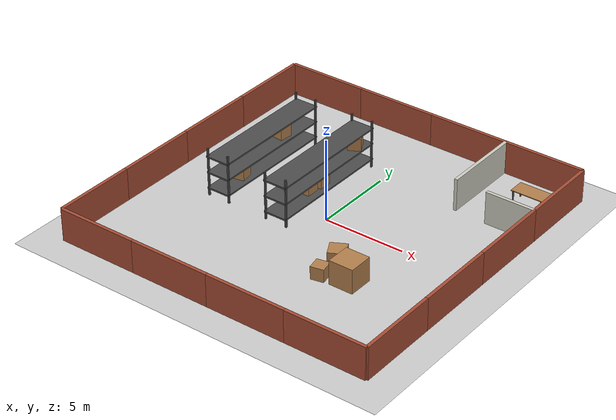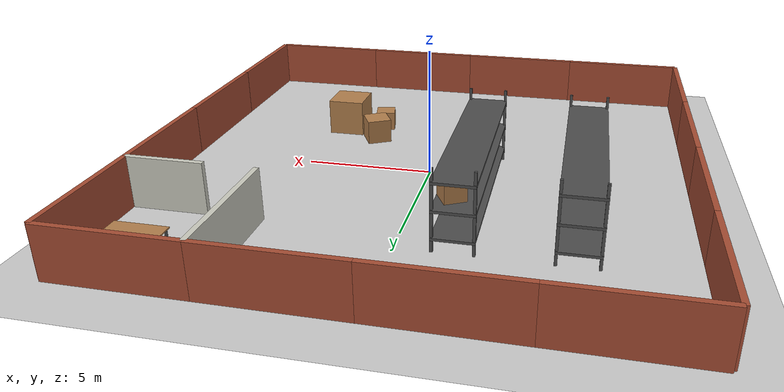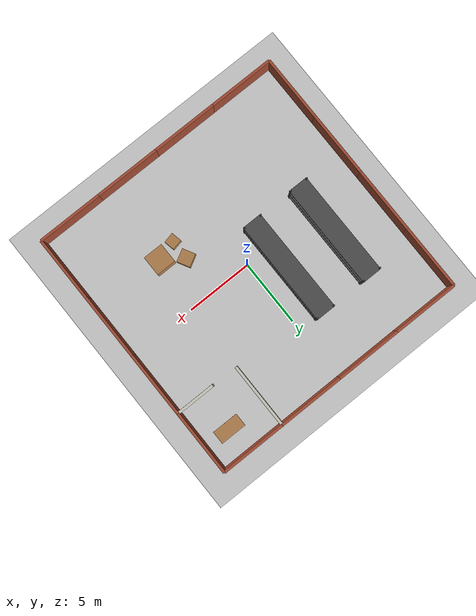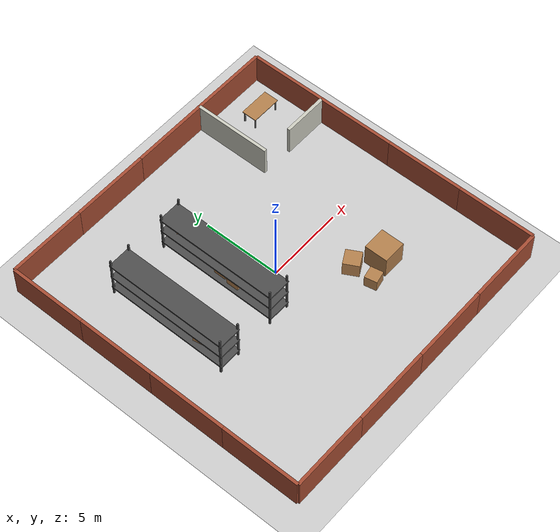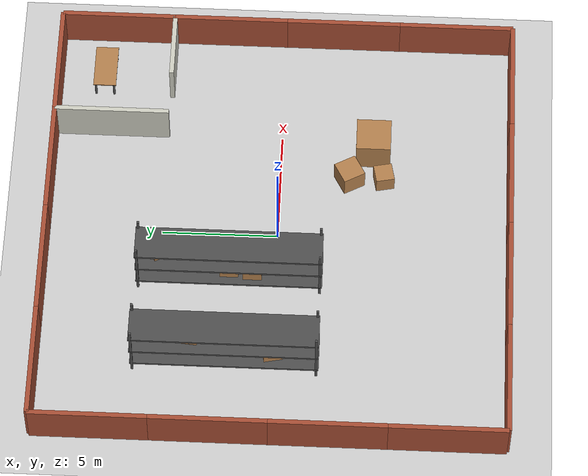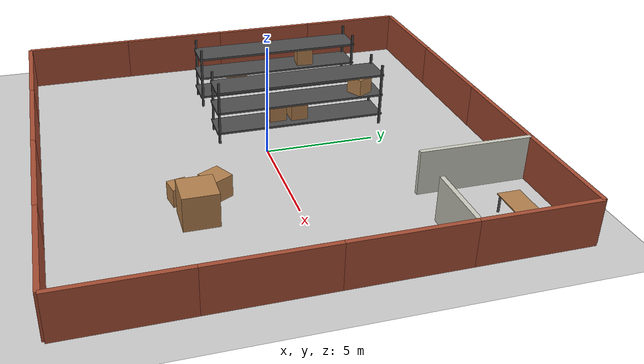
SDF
<?xml version="1.0" ?>
<sdf version="1.6">
  <world name="warehouse">
    <!-- A global light source -->
    <include>
      <uri>model://sun</uri>
    </include>
    <!-- A ground plane -->
    <include>
      <uri>model://ground_plane</uri>
    </include>

    <!-- Outer Walls (Segmented to fix Texture Stretching) -->

    <!-- North Wall Segments -->
    <model name="wall_north_1"><pose>-7.5 10 1 0 0 0</pose><static>true</static><link name="link"><collision name="collision"><geometry><box><size>5 0.2 2</size></box></geometry></collision><visual name="visual"><geometry><box><size>5 0.2 2</size></box></geometry><material><script><uri>file://media/materials/scripts/gazebo.material</uri><name>Gazebo/Bricks</name></script></material></visual></link></model>
    <model name="wall_north_2"><pose>-2.5 10 1 0 0 0</pose><static>true</static><link name="link"><collision name="collision"><geometry><box><size>5 0.2 2</size></box></geometry></collision><visual name="visual"><geometry><box><size>5 0.2 2</size></box></geometry><material><script><uri>file://media/materials/scripts/gazebo.material</uri><name>Gazebo/Bricks</name></script></material></visual></link></model>
    <model name="wall_north_3"><pose>2.5 10 1 0 0 0</pose><static>true</static><link name="link"><collision name="collision"><geometry><box><size>5 0.2 2</size></box></geometry></collision><visual name="visual"><geometry><box><size>5 0.2 2</size></box></geometry><material><script><uri>file://media/materials/scripts/gazebo.material</uri><name>Gazebo/Bricks</name></script></material></visual></link></model>
    <model name="wall_north_4"><pose>7.5 10 1 0 0 0</pose><static>true</static><link name="link"><collision name="collision"><geometry><box><size>5 0.2 2</size></box></geometry></collision><visual name="visual"><geometry><box><size>5 0.2 2</size></box></geometry><material><script><uri>file://media/materials/scripts/gazebo.material</uri><name>Gazebo/Bricks</name></script></material></visual></link></model>

    <!-- South Wall Segments -->
    <model name="wall_south_1"><pose>-7.5 -10 1 0 0 0</pose><static>true</static><link name="link"><collision name="collision"><geometry><box><size>5 0.2 2</size></box></geometry></collision><visual name="visual"><geometry><box><size>5 0.2 2</size></box></geometry><material><script><uri>file://media/materials/scripts/gazebo.material</uri><name>Gazebo/Bricks</name></script></material></visual></link></model>
    <model name="wall_south_2"><pose>-2.5 -10 1 0 0 0</pose><static>true</static><link name="link"><collision name="collision"><geometry><box><size>5 0.2 2</size></box></geometry></collision><visual name="visual"><geometry><box><size>5 0.2 2</size></box></geometry><material><script><uri>file://media/materials/scripts/gazebo.material</uri><name>Gazebo/Bricks</name></script></material></visual></link></model>
    <model name="wall_south_3"><pose>2.5 -10 1 0 0 0</pose><static>true</static><link name="link"><collision name="collision"><geometry><box><size>5 0.2 2</size></box></geometry></collision><visual name="visual"><geometry><box><size>5 0.2 2</size></box></geometry><material><script><uri>file://media/materials/scripts/gazebo.material</uri><name>Gazebo/Bricks</name></script></material></visual></link></model>
    <model name="wall_south_4"><pose>7.5 -10 1 0 0 0</pose><static>true</static><link name="link"><collision name="collision"><geometry><box><size>5 0.2 2</size></box></geometry></collision><visual name="visual"><geometry><box><size>5 0.2 2</size></box></geometry><material><script><uri>file://media/materials/scripts/gazebo.material</uri><name>Gazebo/Bricks</name></script></material></visual></link></model>

    <!-- East Wall Segments -->
    <model name="wall_east_1"><pose>10 -7.5 1 0 0 0</pose><static>true</static><link name="link"><collision name="collision"><geometry><box><size>0.2 5 2</size></box></geometry></collision><visual name="visual"><geometry><box><size>0.2 5 2</size></box></geometry><material><script><uri>file://media/materials/scripts/gazebo.material</uri><name>Gazebo/Bricks</name></script></material></visual></link></model>
    <model name="wall_east_2"><pose>10 -2.5 1 0 0 0</pose><static>true</static><link name="link"><collision name="collision"><geometry><box><size>0.2 5 2</size></box></geometry></collision><visual name="visual"><geometry><box><size>0.2 5 2</size></box></geometry><material><script><uri>file://media/materials/scripts/gazebo.material</uri><name>Gazebo/Bricks</name></script></material></visual></link></model>
    <model name="wall_east_3"><pose>10 2.5 1 0 0 0</pose><static>true</static><link name="link"><collision name="collision"><geometry><box><size>0.2 5 2</size></box></geometry></collision><visual name="visual"><geometry><box><size>0.2 5 2</size></box></geometry><material><script><uri>file://media/materials/scripts/gazebo.material</uri><name>Gazebo/Bricks</name></script></material></visual></link></model>
    <model name="wall_east_4"><pose>10 7.5 1 0 0 0</pose><static>true</static><link name="link"><collision name="collision"><geometry><box><size>0.2 5 2</size></box></geometry></collision><visual name="visual"><geometry><box><size>0.2 5 2</size></box></geometry><material><script><uri>file://media/materials/scripts/gazebo.material</uri><name>Gazebo/Bricks</name></script></material></visual></link></model>

    <!-- West Wall Segments -->
    <model name="wall_west_1"><pose>-10 -7.5 1 0 0 0</pose><static>true</static><link name="link"><collision name="collision"><geometry><box><size>0.2 5 2</size></box></geometry></collision><visual name="visual"><geometry><box><size>0.2 5 2</size></box></geometry><material><script><uri>file://media/materials/scripts/gazebo.material</uri><name>Gazebo/Bricks</name></script></material></visual></link></model>
    <model name="wall_west_2"><pose>-10 -2.5 1 0 0 0</pose><static>true</static><link name="link"><collision name="collision"><geometry><box><size>0.2 5 2</size></box></geometry></collision><visual name="visual"><geometry><box><size>0.2 5 2</size></box></geometry><material><script><uri>file://media/materials/scripts/gazebo.material</uri><name>Gazebo/Bricks</name></script></material></visual></link></model>
    <model name="wall_west_3"><pose>-10 2.5 1 0 0 0</pose><static>true</static><link name="link"><collision name="collision"><geometry><box><size>0.2 5 2</size></box></geometry></collision><visual name="visual"><geometry><box><size>0.2 5 2</size></box></geometry><material><script><uri>file://media/materials/scripts/gazebo.material</uri><name>Gazebo/Bricks</name></script></material></visual></link></model>
    <model name="wall_west_4"><pose>-10 7.5 1 0 0 0</pose><static>true</static><link name="link"><collision name="collision"><geometry><box><size>0.2 5 2</size></box></geometry></collision><visual name="visual"><geometry><box><size>0.2 5 2</size></box></geometry><material><script><uri>file://media/materials/scripts/gazebo.material</uri><name>Gazebo/Bricks</name></script></material></visual></link></model>

    <!-- Office Room in Top Right Corner            -->
    <model name="office_wall_vertical">
      <pose>5 7.5 1 0 0 0</pose>
      <static>true</static>
      <link name="link">
        <collision name="collision"><geometry><box><size>0.2 5 2</size></box></geometry></collision>
        <visual name="visual"><geometry><box><size>0.2 5 2</size></box></geometry><material><script><uri>file://media/materials/scripts/gazebo.material</uri><name>Gazebo/PaintedWall</name></script></material></visual>
      </link>
    </model>

    <model name="office_wall_horizontal">
      <pose>8.5 5 1 0 0 0</pose>
      <static>true</static>
      <link name="link">
        <!-- Leaves a 2-meter gap for an "open door" from x=5 to x=7 -->
        <collision name="collision"><geometry><box><size>3 0.2 2</size></box></geometry></collision>
        <visual name="visual"><geometry><box><size>3 0.2 2</size></box></geometry><material><script><uri>file://media/materials/scripts/gazebo.material</uri><name>Gazebo/PaintedWall</name></script></material></visual>
      </link>
    </model>

    <model name="office_table">
      <pose>8 8 0.4 0 0 0</pose>
      <static>true</static>
      <link name="link">
        <collision name="collision"><geometry><box><size>2 1 0.8</size></box></geometry></collision>
        <visual name="top"><pose>0 0 0.4 0 0 0</pose><geometry><box><size>2 1 0.05</size></box></geometry><material><script><uri>file://media/materials/scripts/gazebo.material</uri><name>Gazebo/Wood</name></script></material></visual>
        <visual name="leg1"><pose>-0.9 -0.4 0 0 0 0</pose><geometry><cylinder><radius>0.05</radius><length>0.8</length></cylinder></geometry><material><script><uri>file://media/materials/scripts/gazebo.material</uri><name>Gazebo/DarkGrey</name></script></material></visual>
        <visual name="leg2"><pose>0.9 -0.4 0 0 0 0</pose><geometry><cylinder><radius>0.05</radius><length>0.8</length></cylinder></geometry><material><script><uri>file://media/materials/scripts/gazebo.material</uri><name>Gazebo/DarkGrey</name></script></material></visual>
        <visual name="leg3"><pose>-0.9 0.4 0 0 0 0</pose><geometry><cylinder><radius>0.05</radius><length>0.8</length></cylinder></geometry><material><script><uri>file://media/materials/scripts/gazebo.material</uri><name>Gazebo/DarkGrey</name></script></material></visual>
        <visual name="leg4"><pose>0.9 0.4 0 0 0 0</pose><geometry><cylinder><radius>0.05</radius><length>0.8</length></cylinder></geometry><material><script><uri>file://media/materials/scripts/gazebo.material</uri><name>Gazebo/DarkGrey</name></script></material></visual>
      </link>
    </model>

    <!-- Detailed Warehouse Shelving Racks          -->
    <!-- Rack 1 -->
    <model name="rack_1">
      <pose>-6 2 1.5 0 0 0</pose>
      <static>true</static>
      <link name="link">
        <!-- One solid collision box for perfect SLAM Mapping without trapping the LiDAR -->
        <collision name="collision"><geometry><box><size>1.5 8 3</size></box></geometry></collision>

        <!-- Structural Shelves -->
        <visual name="board1"><pose>0 0 -1.0 0 0 0</pose><geometry><box><size>1.5 8 0.1</size></box></geometry><material><script><uri>file://media/materials/scripts/gazebo.material</uri><name>Gazebo/DarkGrey</name></script></material></visual>
        <visual name="board2"><pose>0 0 0.0 0 0 0</pose><geometry><box><size>1.5 8 0.1</size></box></geometry><material><script><uri>file://media/materials/scripts/gazebo.material</uri><name>Gazebo/DarkGrey</name></script></material></visual>
        <visual name="board3"><pose>0 0 1.0 0 0 0</pose><geometry><box><size>1.5 8 0.1</size></box></geometry><material><script><uri>file://media/materials/scripts/gazebo.material</uri><name>Gazebo/DarkGrey</name></script></material></visual>
        <visual name="pole1"><pose>0.7 3.9 0 0 0 0</pose><geometry><box><size>0.1 0.1 3</size></box></geometry><material><script><uri>file://media/materials/scripts/gazebo.material</uri><name>Gazebo/DarkGrey</name></script></material></visual>
        <visual name="pole2"><pose>-0.7 3.9 0 0 0 0</pose><geometry><box><size>0.1 0.1 3</size></box></geometry><material><script><uri>file://media/materials/scripts/gazebo.material</uri><name>Gazebo/DarkGrey</name></script></material></visual>
        <visual name="pole3"><pose>0.7 -3.9 0 0 0 0</pose><geometry><box><size>0.1 0.1 3</size></box></geometry><material><script><uri>file://media/materials/scripts/gazebo.material</uri><name>Gazebo/DarkGrey</name></script></material></visual>
        <visual name="pole4"><pose>-0.7 -3.9 0 0 0 0</pose><geometry><box><size>0.1 0.1 3</size></box></geometry><material><script><uri>file://media/materials/scripts/gazebo.material</uri><name>Gazebo/DarkGrey</name></script></material></visual>

        <!-- Crates stored ON the shelves -->
        <visual name="crate1"><pose>0 -2.0 -0.55 0 0 0.2</pose><geometry><box><size>0.8 0.8 0.8</size></box></geometry><material><script><uri>file://media/materials/scripts/gazebo.material</uri><name>Gazebo/WoodPallet</name></script></material></visual>
        <visual name="crate2"><pose>0.1 1.5 0.45 0 0 -0.1</pose><geometry><box><size>0.8 0.8 0.8</size></box></geometry><material><script><uri>file://media/materials/scripts/gazebo.material</uri><name>Gazebo/WoodPallet</name></script></material></visual>
      </link>
    </model>

    <!-- Rack 2 -->
    <model name="rack_2">
      <pose>-2 2 1.5 0 0 0</pose>
      <static>true</static>
      <link name="link">
        <collision name="collision"><geometry><box><size>1.5 8 3</size></box></geometry></collision>

        <!-- Structural Shelves -->
        <visual name="board1"><pose>0 0 -1.0 0 0 0</pose><geometry><box><size>1.5 8 0.1</size></box></geometry><material><script><uri>file://media/materials/scripts/gazebo.material</uri><name>Gazebo/DarkGrey</name></script></material></visual>
        <visual name="board2"><pose>0 0 0.0 0 0 0</pose><geometry><box><size>1.5 8 0.1</size></box></geometry><material><script><uri>file://media/materials/scripts/gazebo.material</uri><name>Gazebo/DarkGrey</name></script></material></visual>
        <visual name="board3"><pose>0 0 1.0 0 0 0</pose><geometry><box><size>1.5 8 0.1</size></box></geometry><material><script><uri>file://media/materials/scripts/gazebo.material</uri><name>Gazebo/DarkGrey</name></script></material></visual>
        <visual name="pole1"><pose>0.7 3.9 0 0 0 0</pose><geometry><box><size>0.1 0.1 3</size></box></geometry><material><script><uri>file://media/materials/scripts/gazebo.material</uri><name>Gazebo/DarkGrey</name></script></material></visual>
        <visual name="pole2"><pose>-0.7 3.9 0 0 0 0</pose><geometry><box><size>0.1 0.1 3</size></box></geometry><material><script><uri>file://media/materials/scripts/gazebo.material</uri><name>Gazebo/DarkGrey</name></script></material></visual>
        <visual name="pole3"><pose>0.7 -3.9 0 0 0 0</pose><geometry><box><size>0.1 0.1 3</size></box></geometry><material><script><uri>file://media/materials/scripts/gazebo.material</uri><name>Gazebo/DarkGrey</name></script></material></visual>
        <visual name="pole4"><pose>-0.7 -3.9 0 0 0 0</pose><geometry><box><size>0.1 0.1 3</size></box></geometry><material><script><uri>file://media/materials/scripts/gazebo.material</uri><name>Gazebo/DarkGrey</name></script></material></visual>

        <!-- Crates stored ON the shelves -->
        <visual name="crate3"><pose>-0.1 -1.0 -0.55 0 0 0</pose><geometry><box><size>0.8 0.8 0.8</size></box></geometry><material><script><uri>file://media/materials/scripts/gazebo.material</uri><name>Gazebo/WoodPallet</name></script></material></visual>
        <visual name="crate4"><pose>0.2 3.0 0.45 0 0 0.5</pose><geometry><box><size>0.8 0.8 0.8</size></box></geometry><material><script><uri>file://media/materials/scripts/gazebo.material</uri><name>Gazebo/WoodPallet</name></script></material></visual>
        <visual name="crate5"><pose>0 0 -0.55 0 0 0</pose><geometry><box><size>0.8 0.8 0.8</size></box></geometry><material><script><uri>file://media/materials/scripts/gazebo.material</uri><name>Gazebo/WoodPallet</name></script></material></visual>
      </link>
    </model>

    <!-- Scattered Crates/Boxes in the open area    -->
    <model name="loose_crate_1">
      <pose>3 -3 0.5 0 0 0.5</pose>
      <static>true</static>
      <link name="link">
        <collision name="collision"><geometry><box><size>1 1 1</size></box></geometry></collision>
        <visual name="visual"><geometry><box><size>1 1 1</size></box></geometry><material><script><uri>file://media/materials/scripts/gazebo.material</uri><name>Gazebo/WoodPallet</name></script></material></visual>
      </link>
    </model>

    <model name="loose_crate_2">
      <pose>4.5 -4 0.75 0 0 0</pose>
      <static>true</static>
      <link name="link">
        <collision name="collision"><geometry><box><size>1.5 1.5 1.5</size></box></geometry></collision>
        <visual name="visual"><geometry><box><size>1.5 1.5 1.5</size></box></geometry><material><script><uri>file://media/materials/scripts/gazebo.material</uri><name>Gazebo/WoodPallet</name></script></material></visual>
      </link>
    </model>

    <model name="loose_crate_3">
      <pose>3 -4.5 0.4 0 0 0.2</pose>
      <static>true</static>
      <link name="link">
        <collision name="collision"><geometry><box><size>0.8 0.8 0.8</size></box></geometry></collision>
        <visual name="visual"><geometry><box><size>0.8 0.8 0.8</size></box></geometry><material><script><uri>file://media/materials/scripts/gazebo.material</uri><name>Gazebo/WoodPallet</name></script></material></visual>
      </link>
    </model>

  </world>
</sdf>
